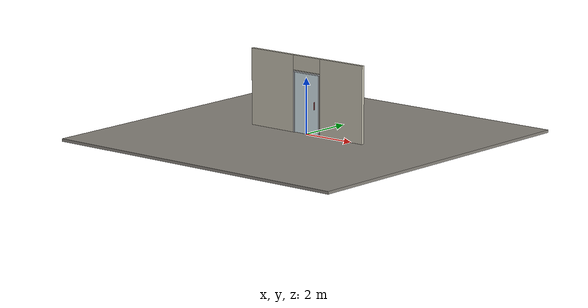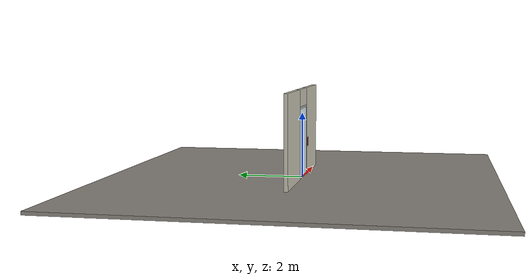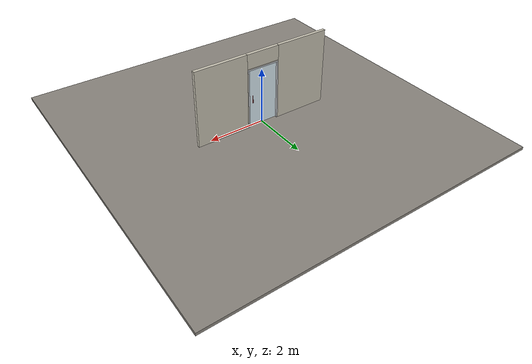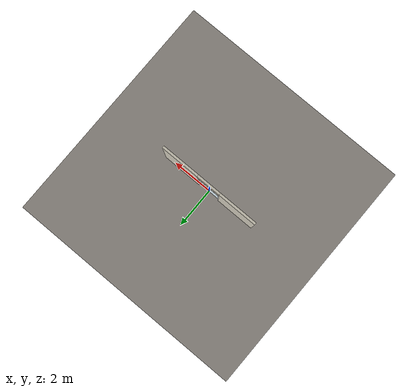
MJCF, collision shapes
<?xml version="1.0" ?>
<mujoco model="db0224_swing_single_minimal">
  <compiler angle="radian" meshdir="../../hardware" texturedir="../../textures" autolimits="true" inertiafromgeom="false"/>
  <option timestep="0.002" integrator="implicitfast" cone="elliptic" impratio="10" noslip_iterations="3">
    <flag multiccd="enable"/>
  </option>
  <size memory="16M"/>
  <default>
    <geom condim="4" solref="0.005 1" solimp="0.95 0.99 0.001"/>
    <joint solreflimit="0.005 1" solimplimit="0.95 0.99 0.001"/>
    <tendon solreflimit="0.005 1"/>
    <equality solref="0.002 1"/>
  </default>
  <visual>
    <headlight ambient="0.4 0.4 0.4" diffuse="0.7 0.7 0.7" specular="0.2 0.2 0.2"/>
    <quality shadowsize="4096"/>
    <map znear="0.01" zfar="60"/>
  </visual>
  <asset>
    <mesh name="pull_f8d79d6331" file="pull_f8d79d6331.obj"/>
    <material name="mat_floor" rgba="0.55 0.53 0.5 1" specular="0.2" shininess="0.15" reflectance="0"/>
    <material name="mat_wall" rgba="0.78 0.76 0.7 1" specular="0.2" shininess="0.1" reflectance="0"/>
    <material name="mat_leaf" rgba="0.85 0.92 0.95 0.25" specular="0.2" shininess="0.95" reflectance="0.1"/>
    <material name="mat_glass_leaf" rgba="0.85 0.92 0.95 0.25" specular="0.2" shininess="0.95" reflectance="0.1"/>
    <material name="mat_patch" rgba="0.75 0.76 0.77 1" specular="0.8" shininess="0.65" reflectance="0.4"/>
    <material name="mat_hinge" rgba="0.65 0.66 0.68 1" specular="0.74" shininess="0.5" reflectance="0.36"/>
    <material name="mat_op_stainless" rgba="0.75 0.76 0.77 1" specular="0.8" shininess="0.65" reflectance="0.4"/>
    <material name="mat_frame" rgba="0.8 0.81 0.83 1" specular="0.8" shininess="0.6" reflectance="0.4"/>
    <material name="mat_closer" rgba="0.22 0.17 0.13 1" specular="0.8" shininess="0.6" reflectance="0.4"/>
    <material name="mat_wallreader" rgba="0.05 0.05 0.05 1" specular="0.38" shininess="0.3" reflectance="0.12"/>
    <texture name="skybox" type="skybox" builtin="gradient" rgb1="0.6 0.7 0.85" rgb2="0.9 0.92 0.95" width="256" height="256"/>
  </asset>
  <worldbody>
    <light name="sun" pos="1.5 -2.5 4" dir="-0.3 0.5 -0.8" directional="true" diffuse="0.8 0.8 0.8" specular="0.3 0.3 0.3" castshadow="true"/>
    <light name="fill" pos="-1.5 2.5 3" dir="0.3 -0.5 -0.7" directional="true" diffuse="0.35 0.35 0.4" castshadow="false"/>
    <camera name="robot_view" pos="0 -2.609812 1.812087" xyaxes="1 0 0 0 0.26963 0.962964" fovy="52"/>
    <camera name="far_view" pos="0 2.665812 1.812087" xyaxes="-1 0 0 0 -0.26963 0.962964" fovy="52"/>
    <camera name="iso" pos="2.004737 -2.187762 2.234138" xyaxes="0.741536 0.670913 0 -0.242917 0.268487 0.932151" fovy="46"/>
    <camera name="detail_handle" pos="0.6065 -0.8975 1.347" xyaxes="0.97561 0.219512 0 -0.070934 0.315262 0.94635" fovy="38"/>
    <geom name="floor" type="box" size="6 6 0.05" pos="0 0 -0.05" material="mat_floor" group="0" contype="1" conaffinity="1" friction="0.8 0.005 0.0001" density="2400"/>
    <geom name="wall_left" type="box" size="0.95825 0.0575 1.3735" pos="-1.54175 0.028 1.3735" material="mat_wall" group="0" contype="1" conaffinity="1" friction="0.6 0.005 0.0001" density="800"/>
    <geom name="wall_right" type="box" size="0.94325 0.0575 1.3735" pos="1.55675 0.028 1.3735" material="mat_wall" group="0" contype="1" conaffinity="1" friction="0.6 0.005 0.0001" density="800"/>
    <geom name="wall_header" type="box" size="0.5985 0.0575 0.2625" pos="0.015 0.028 2.4845" material="mat_wall" group="0" contype="1" conaffinity="1" friction="0.6 0.005 0.0001" density="800"/>
    <geom name="jamb_hinge" type="box" size="0.0225 0.0575 1.0735" pos="-0.561 0.028 1.0735" material="mat_frame" group="0" contype="1" conaffinity="1" friction="0.6 0.005 0.0001" density="300"/>
    <geom name="jamb_strike" type="box" size="0.0225 0.0575 1.0735" pos="0.561 0.028 1.0735" material="mat_frame" group="0" contype="1" conaffinity="1" friction="0.6 0.005 0.0001" density="300"/>
    <geom name="stud_strike" type="box" size="0.015 0.0575 1.0735" pos="0.5985 0.028 1.0735" material="mat_wall" group="0" contype="1" conaffinity="1" friction="0.6 0.005 0.0001" density="500"/>
    <geom name="jamb_head" type="box" size="0.5985 0.0575 0.0225" pos="0.015 0.028 2.1695" material="mat_frame" group="0" contype="1" conaffinity="1" friction="0.6 0.005 0.0001" density="300"/>
    <geom name="head_stud" type="box" size="0.5985 0.0575 0.015" pos="0.015 0.028 2.207" material="mat_wall" group="0" contype="1" conaffinity="1" friction="0.6 0.005 0.0001" density="500"/>
    <site name="approach_point" pos="0 -1.5 0" quat="1 0 0 0" size="0.05" rgba="0.2 0.9 0.2 0.5" group="4"/>
    <site name="goal_point" pos="0 1.5 0" quat="1 0 0 0" size="0.05" rgba="0.2 0.9 0.2 0.5" group="4"/>
    <site name="door_plane_center" pos="0 0 1.0735" quat="1 0 0 0" size="0.02" rgba="0.2 0.9 0.2 0.5" group="4"/>
    <body name="leaf" pos="-0.5385 0 0">
      <inertial pos="0.547597 0 1.075767" mass="122.102116" quat="0.500089 0.500089 0.499911 -0.499911" diaginertia="11.89601846 45.208699754 57.01275878"/>
      <joint name="leaf_hinge" type="hinge" axis="0 0 -1" pos="0.019 -0.0325 0" limited="true" range="0 2.443461" solreflimit="0.02 1" damping="15.49954" frictionloss="2.245091" stiffness="46.002145" springref="-2.401845" armature="0.02"/>
      <geom name="leaf_glass" type="box" size="0.5335 0.0225 1.067" pos="0.5365 0 1.076" material="mat_glass_leaf" group="0" contype="1" conaffinity="1" friction="0.4 0.005 0.0001" density="1"/>
      <geom name="leaf_pull_n" type="mesh" mesh="pull_f8d79d6331" pos="0.965 -0.0225 1.067" quat="0.707107 0.707107 0 0" material="mat_op_stainless" group="1" contype="0" conaffinity="0" density="3000"/>
      <geom name="leaf_pull_col_n" type="capsule" size="0.0125 0.13" pos="0.965 -0.0975 1.067" material="mat_op_stainless" group="3" contype="1" conaffinity="1" rgba="0.8 0.3 0.3 0.25" friction="0.7 0.01 0.0001" density="3000"/>
      <geom name="leaf_pull_p" type="mesh" mesh="pull_f8d79d6331" pos="0.965 0.0225 1.067" quat="-0.707107 0.707107 0 0" material="mat_op_stainless" group="1" contype="0" conaffinity="0" density="3000"/>
      <geom name="leaf_pull_col_p" type="capsule" size="0.0125 0.13" pos="0.965 0.0975 1.067" material="mat_op_stainless" group="3" contype="1" conaffinity="1" rgba="0.8 0.3 0.3 0.25" friction="0.7 0.01 0.0001" density="3000"/>
      <site name="leaf_pull_grip_n" pos="0.965 -0.0975 1.067" quat="1 0 0 0" size="0.012" rgba="0.2 0.9 0.2 0.5" group="4"/>
      <site name="leaf_pull_grip_p" pos="0.965 0.0975 1.067" quat="1 0 0 0" size="0.012" rgba="0.2 0.9 0.2 0.5" group="4"/>
      <site name="leaf_edge_mid" pos="1.07 0 1.067" quat="1 0 0 0" size="0.02" rgba="0.2 0.9 0.2 0.5" group="4"/>
    </body>
  </worldbody>
  <sensor>
    <jointpos name="leaf_hinge_pos" joint="leaf_hinge"/>
    <jointvel name="leaf_hinge_vel" joint="leaf_hinge"/>
  </sensor>
</mujoco>
